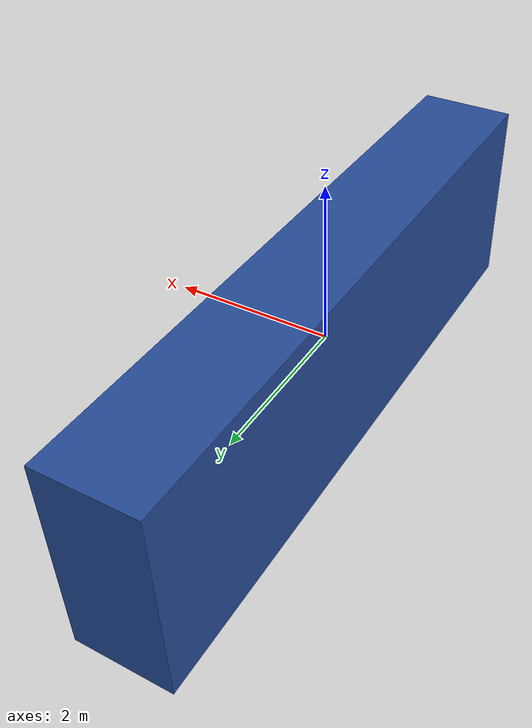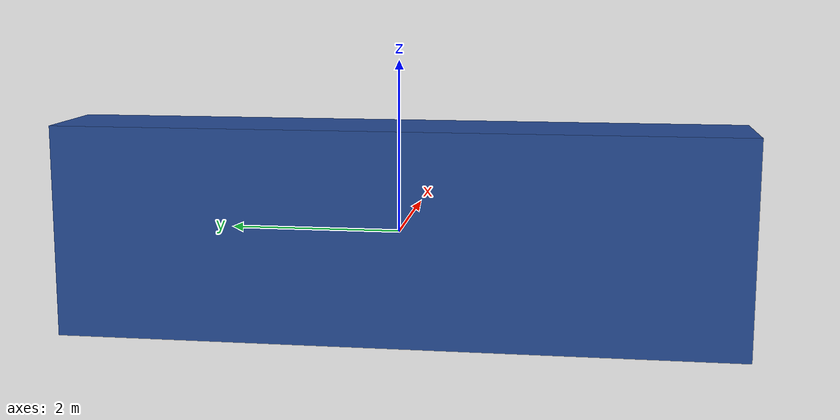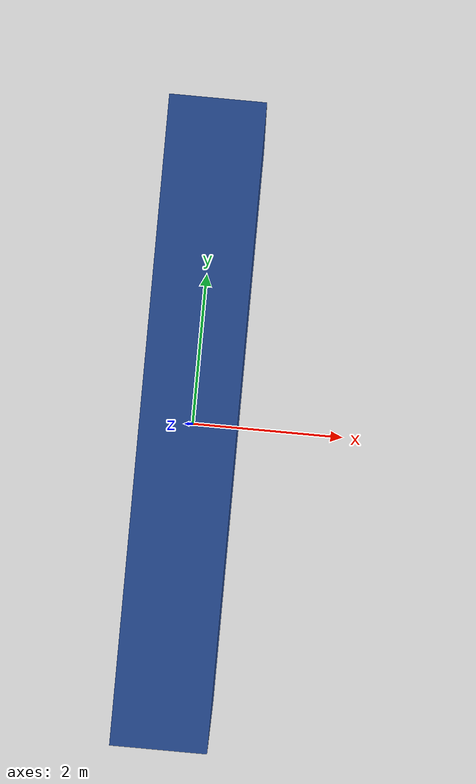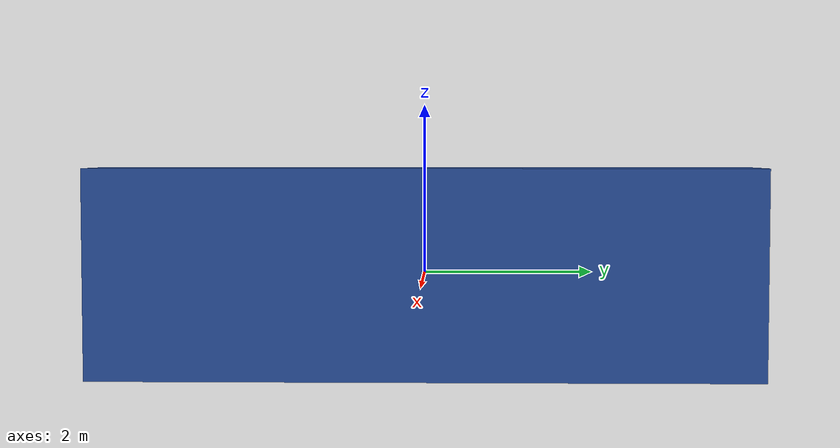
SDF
<?xml version="1.0" ?>
<sdf version="1.8">
  <model name="warehouse_rack">
    <static>true</static>
    <link name="rack_link">
      <collision name="collision">
        <geometry>
          <box><size>1.2 8.0 2.5</size></box>
        </geometry>
      </collision>
      <visual name="visual">
        <geometry>
          <box><size>1.2 8.0 2.5</size></box>
        </geometry>
        <material>
          <ambient>0.15 0.3 0.6 1</ambient>
          <diffuse>0.15 0.3 0.6 1</diffuse>
        </material>
      </visual>
    </link>
  </model>
</sdf>
